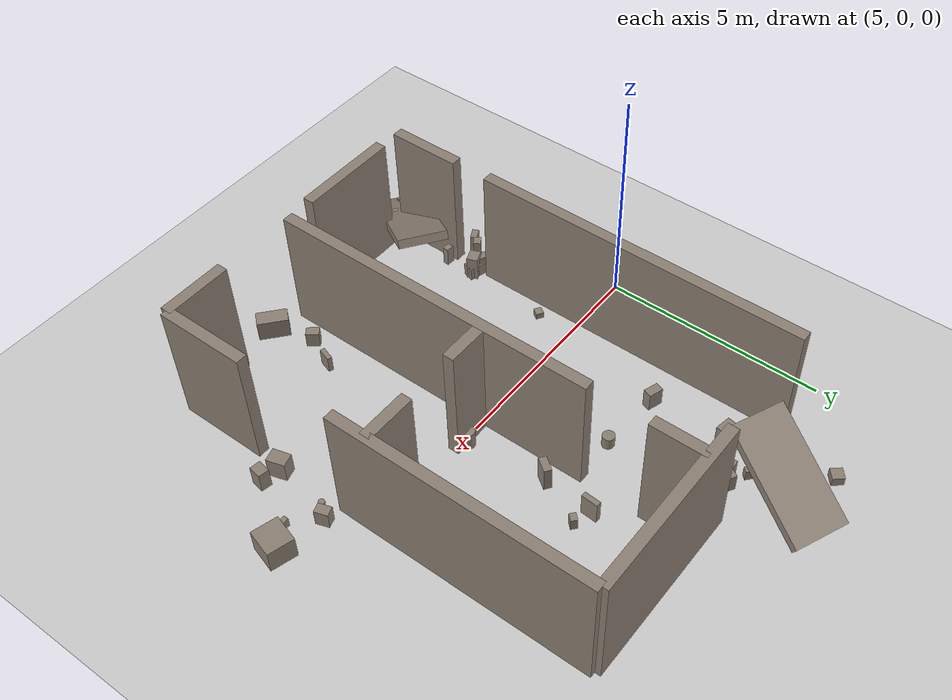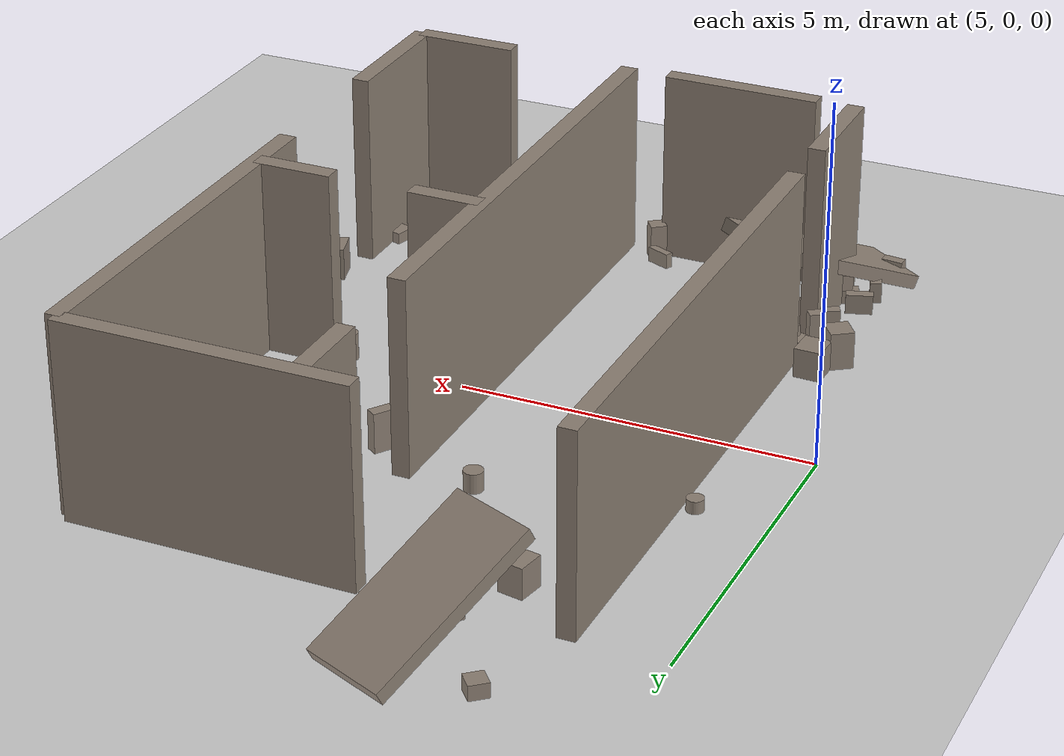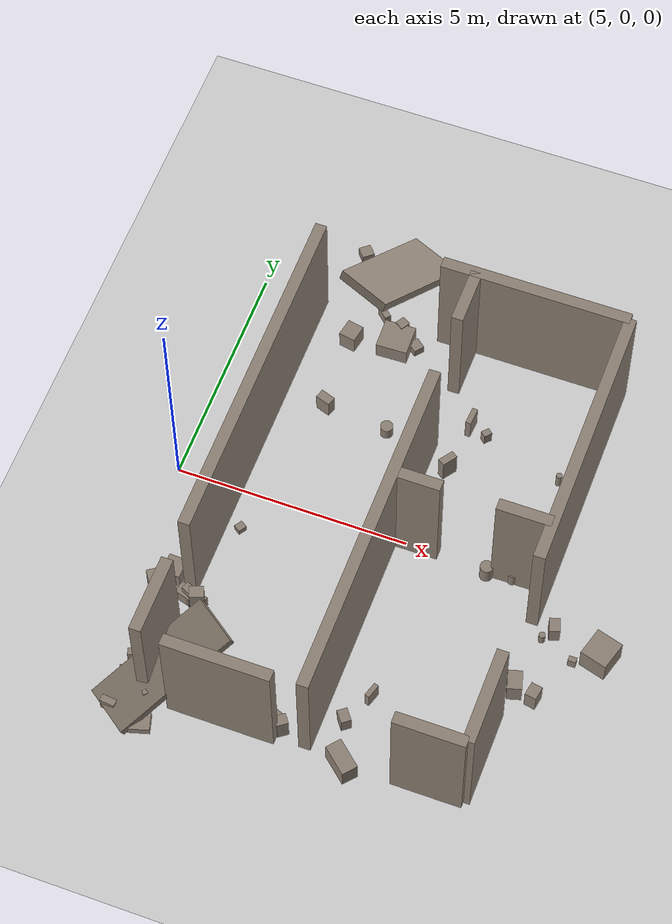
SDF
<sdf version="1.6">
 <world name="default">
  <model name="ground_plane">
   <static>1</static>
   <link name="link">
    <collision name="collision">
     <geometry><plane><normal>0 0 1</normal><size>100 100</size></plane></geometry>
     <surface><friction><ode><mu>100</mu><mu2>50</mu2></ode></friction></surface>
    </collision>
    <visual name="visual">
     <cast_shadows>0</cast_shadows>
     <geometry><plane><normal>0 0 1</normal><size>100 100</size></plane></geometry>
     <material>
      <script><uri>file://media/materials/scripts/gazebo.material</uri><name>Gazebo/Grey</name></script>
     </material>
    </visual>
   </link>
  </model>
  <model name="outer1_0">
   <static>1</static>
   <pose>13.000 -3.991 1.400 0 0.0000 1.5708</pose>
   <link name="l">
    <collision name="c"><geometry><box><size>2.018 0.250 2.800</size></box></geometry></collision>
    <visual name="v">
     <geometry><box><size>2.018 0.250 2.800</size></box></geometry>
     <material><ambient>0.55 0.5 0.45 1</ambient><diffuse>0.55 0.5 0.45 1</diffuse></material>
    </visual>
   </link>
  </model>
  <model name="outer1_1">
   <static>1</static>
   <pose>13.000 2.075 1.400 0 0.0000 1.5708</pose>
   <link name="l">
    <collision name="c"><geometry><box><size>5.851 0.250 2.800</size></box></geometry></collision>
    <visual name="v">
     <geometry><box><size>5.851 0.250 2.800</size></box></geometry>
     <material><ambient>0.55 0.5 0.45 1</ambient><diffuse>0.55 0.5 0.45 1</diffuse></material>
    </visual>
   </link>
  </model>
  <model name="outer2_1">
   <static>1</static>
   <pose>7.971 -5.000 1.400 0 0.0000 0.0000</pose>
   <link name="l">
    <collision name="c"><geometry><box><size>2.255 0.250 2.800</size></box></geometry></collision>
    <visual name="v">
     <geometry><box><size>2.255 0.250 2.800</size></box></geometry>
     <material><ambient>0.55 0.5 0.45 1</ambient><diffuse>0.55 0.5 0.45 1</diffuse></material>
    </visual>
   </link>
  </model>
  <model name="outer2_2">
   <static>1</static>
   <pose>12.260 -5.000 1.400 0 0.0000 0.0000</pose>
   <link name="l">
    <collision name="c"><geometry><box><size>1.479 0.250 2.800</size></box></geometry></collision>
    <visual name="v">
     <geometry><box><size>1.479 0.250 2.800</size></box></geometry>
     <material><ambient>0.55 0.5 0.45 1</ambient><diffuse>0.55 0.5 0.45 1</diffuse></material>
    </visual>
   </link>
  </model>
  <model name="outer3_1">
   <static>1</static>
   <pose>10.977 5.000 1.400 0 0.0000 0.0000</pose>
   <link name="l">
    <collision name="c"><geometry><box><size>4.045 0.250 2.800</size></box></geometry></collision>
    <visual name="v">
     <geometry><box><size>4.045 0.250 2.800</size></box></geometry>
     <material><ambient>0.55 0.5 0.45 1</ambient><diffuse>0.55 0.5 0.45 1</diffuse></material>
    </visual>
   </link>
  </model>
  <model name="part0_0">
   <static>1</static>
   <pose>6.300 -4.178 1.400 0 0.0000 1.5708</pose>
   <link name="l">
    <collision name="c"><geometry><box><size>1.644 0.250 2.800</size></box></geometry></collision>
    <visual name="v">
     <geometry><box><size>1.644 0.250 2.800</size></box></geometry>
     <material><ambient>0.55 0.5 0.45 1</ambient><diffuse>0.55 0.5 0.45 1</diffuse></material>
    </visual>
   </link>
  </model>
  <model name="part0_1">
   <static>1</static>
   <pose>6.300 1.231 1.400 0 0.0000 1.5708</pose>
   <link name="l">
    <collision name="c"><geometry><box><size>7.538 0.250 2.800</size></box></geometry></collision>
    <visual name="v">
     <geometry><box><size>7.538 0.250 2.800</size></box></geometry>
     <material><ambient>0.55 0.5 0.45 1</ambient><diffuse>0.55 0.5 0.45 1</diffuse></material>
    </visual>
   </link>
  </model>
  <model name="part1_0">
   <static>1</static>
   <pose>9.700 -1.273 1.400 0 0.0000 1.5708</pose>
   <link name="l">
    <collision name="c"><geometry><box><size>7.454 0.250 2.800</size></box></geometry></collision>
    <visual name="v">
     <geometry><box><size>7.454 0.250 2.800</size></box></geometry>
     <material><ambient>0.55 0.5 0.45 1</ambient><diffuse>0.55 0.5 0.45 1</diffuse></material>
    </visual>
   </link>
  </model>
  <model name="part1_1">
   <static>1</static>
   <pose>9.700 4.390 1.400 0 0.0000 1.5708</pose>
   <link name="l">
    <collision name="c"><geometry><box><size>1.221 0.250 2.800</size></box></geometry></collision>
    <visual name="v">
     <geometry><box><size>1.221 0.250 2.800</size></box></geometry>
     <material><ambient>0.55 0.5 0.45 1</ambient><diffuse>0.55 0.5 0.45 1</diffuse></material>
    </visual>
   </link>
  </model>
  <model name="back_0">
   <static>1</static>
   <pose>10.207 0.000 1.400 0 0.0000 0.0000</pose>
   <link name="l">
    <collision name="c"><geometry><box><size>1.014 0.250 2.800</size></box></geometry></collision>
    <visual name="v">
     <geometry><box><size>1.014 0.250 2.800</size></box></geometry>
     <material><ambient>0.55 0.5 0.45 1</ambient><diffuse>0.55 0.5 0.45 1</diffuse></material>
    </visual>
   </link>
  </model>
  <model name="back_1">
   <static>1</static>
   <pose>12.433 0.000 1.400 0 0.0000 0.0000</pose>
   <link name="l">
    <collision name="c"><geometry><box><size>1.135 0.250 2.800</size></box></geometry></collision>
    <visual name="v">
     <geometry><box><size>1.135 0.250 2.800</size></box></geometry>
     <material><ambient>0.55 0.5 0.45 1</ambient><diffuse>0.55 0.5 0.45 1</diffuse></material>
    </visual>
   </link>
  </model>
  <model name="rubble_25">
   <static>1</static>
   <pose>13.565 -2.472 0.237 0 0.0000 2.9727</pose>
   <link name="l">
    <collision name="c"><geometry><box><size>0.243 0.292 0.474</size></box></geometry></collision>
    <visual name="v">
     <geometry><box><size>0.243 0.292 0.474</size></box></geometry>
     <material><ambient>0.55 0.5 0.45 1</ambient><diffuse>0.55 0.5 0.45 1</diffuse></material>
    </visual>
   </link>
  </model>
  <model name="rubble_26">
   <static>1</static>
   <pose>13.142 -2.372 0.240 0 0.0000 0.2754</pose>
   <link name="l">
    <collision name="c"><geometry><box><size>0.303 0.410 0.480</size></box></geometry></collision>
    <visual name="v">
     <geometry><box><size>0.303 0.410 0.480</size></box></geometry>
     <material><ambient>0.55 0.5 0.45 1</ambient><diffuse>0.55 0.5 0.45 1</diffuse></material>
    </visual>
   </link>
  </model>
  <model name="rubble_27">
   <static>1</static>
   <pose>14.039 -1.427 0.112 0 0.0000 1.5655</pose>
   <link name="l">
    <collision name="c"><geometry><box><size>0.112 0.166 0.225</size></box></geometry></collision>
    <visual name="v">
     <geometry><box><size>0.112 0.166 0.225</size></box></geometry>
     <material><ambient>0.55 0.5 0.45 1</ambient><diffuse>0.55 0.5 0.45 1</diffuse></material>
    </visual>
   </link>
  </model>
  <model name="rubble_28">
   <static>1</static>
   <pose>14.538 -1.159 0.270 0 0.0000 2.8644</pose>
   <link name="l">
    <collision name="c"><geometry><box><size>0.586 0.624 0.540</size></box></geometry></collision>
    <visual name="v">
     <geometry><box><size>0.586 0.624 0.540</size></box></geometry>
     <material><ambient>0.55 0.5 0.45 1</ambient><diffuse>0.55 0.5 0.45 1</diffuse></material>
    </visual>
   </link>
  </model>
  <model name="rubble_29">
   <static>1</static>
   <pose>13.486 -0.903 0.196 0 0.0000 1.8927</pose>
   <link name="l">
    <collision name="c"><geometry><box><size>0.301 0.219 0.393</size></box></geometry></collision>
    <visual name="v">
     <geometry><box><size>0.301 0.219 0.393</size></box></geometry>
     <material><ambient>0.55 0.5 0.45 1</ambient><diffuse>0.55 0.5 0.45 1</diffuse></material>
    </visual>
   </link>
  </model>
  <model name="rubble_30">
   <static>1</static>
   <pose>5.774 -4.727 0.153 0 0.0000 0.3394</pose>
   <link name="l">
    <collision name="c"><geometry><box><size>0.166 0.151 0.306</size></box></geometry></collision>
    <visual name="v">
     <geometry><box><size>0.166 0.151 0.306</size></box></geometry>
     <material><ambient>0.55 0.5 0.45 1</ambient><diffuse>0.55 0.5 0.45 1</diffuse></material>
    </visual>
   </link>
  </model>
  <model name="rubble_31">
   <static>1</static>
   <pose>6.247 -4.514 0.215 0 0.0000 2.2440</pose>
   <link name="l">
    <collision name="c"><geometry><box><size>0.209 0.335 0.431</size></box></geometry></collision>
    <visual name="v">
     <geometry><box><size>0.209 0.335 0.431</size></box></geometry>
     <material><ambient>0.55 0.5 0.45 1</ambient><diffuse>0.55 0.5 0.45 1</diffuse></material>
    </visual>
   </link>
  </model>
  <model name="rubble_32">
   <static>1</static>
   <pose>6.153 -4.541 0.100 0 0.0000 0.4188</pose>
   <link name="l">
    <collision name="c"><geometry><box><size>0.366 0.174 0.199</size></box></geometry></collision>
    <visual name="v">
     <geometry><box><size>0.366 0.174 0.199</size></box></geometry>
     <material><ambient>0.55 0.5 0.45 1</ambient><diffuse>0.55 0.5 0.45 1</diffuse></material>
    </visual>
   </link>
  </model>
  <model name="rubble_33">
   <static>1</static>
   <pose>6.441 -5.160 0.268 0 0.0000 2.3143</pose>
   <link name="l">
    <collision name="c"><geometry><box><size>0.104 0.149 0.537</size></box></geometry></collision>
    <visual name="v">
     <geometry><box><size>0.104 0.149 0.537</size></box></geometry>
     <material><ambient>0.55 0.5 0.45 1</ambient><diffuse>0.55 0.5 0.45 1</diffuse></material>
    </visual>
   </link>
  </model>
  <model name="rubble_34">
   <static>1</static>
   <pose>6.408 -5.663 0.091 0 0.0000 0.2832</pose>
   <link name="l">
    <collision name="c"><geometry><box><size>0.576 0.382 0.182</size></box></geometry></collision>
    <visual name="v">
     <geometry><box><size>0.576 0.382 0.182</size></box></geometry>
     <material><ambient>0.55 0.5 0.45 1</ambient><diffuse>0.55 0.5 0.45 1</diffuse></material>
    </visual>
   </link>
  </model>
  <model name="rubble_35">
   <static>1</static>
   <pose>5.764 -5.498 0.157 0 0.0000 3.0426</pose>
   <link name="l">
    <collision name="c"><geometry><box><size>0.315 0.151 0.314</size></box></geometry></collision>
    <visual name="v">
     <geometry><box><size>0.315 0.151 0.314</size></box></geometry>
     <material><ambient>0.55 0.5 0.45 1</ambient><diffuse>0.55 0.5 0.45 1</diffuse></material>
    </visual>
   </link>
  </model>
  <model name="rubble_36">
   <static>1</static>
   <pose>5.877 -4.303 0.144 0 0.0000 0.3114</pose>
   <link name="l">
    <collision name="c"><geometry><box><size>0.384 0.150 0.288</size></box></geometry></collision>
    <visual name="v">
     <geometry><box><size>0.384 0.150 0.288</size></box></geometry>
     <material><ambient>0.55 0.5 0.45 1</ambient><diffuse>0.55 0.5 0.45 1</diffuse></material>
    </visual>
   </link>
  </model>
  <model name="rubble_38">
   <static>1</static>
   <pose>10.238 -4.216 0.181 0 0.0000 0.6585</pose>
   <link name="l">
    <collision name="c"><geometry><box><size>0.212 0.286 0.363</size></box></geometry></collision>
    <visual name="v">
     <geometry><box><size>0.212 0.286 0.363</size></box></geometry>
     <material><ambient>0.55 0.5 0.45 1</ambient><diffuse>0.55 0.5 0.45 1</diffuse></material>
    </visual>
   </link>
  </model>
  <model name="rubble_39">
   <static>1</static>
   <pose>9.144 -4.801 0.260 0 0.0000 0.6329</pose>
   <link name="l">
    <collision name="c"><geometry><box><size>0.240 0.229 0.519</size></box></geometry></collision>
    <visual name="v">
     <geometry><box><size>0.240 0.229 0.519</size></box></geometry>
     <material><ambient>0.55 0.5 0.45 1</ambient><diffuse>0.55 0.5 0.45 1</diffuse></material>
    </visual>
   </link>
  </model>
  <model name="rubble_40">
   <static>1</static>
   <pose>10.520 -5.112 0.238 0 0.0000 2.4332</pose>
   <link name="l">
    <collision name="c"><geometry><box><size>0.674 0.346 0.475</size></box></geometry></collision>
    <visual name="v">
     <geometry><box><size>0.674 0.346 0.475</size></box></geometry>
     <material><ambient>0.55 0.5 0.45 1</ambient><diffuse>0.55 0.5 0.45 1</diffuse></material>
    </visual>
   </link>
  </model>
  <model name="rubble_41">
   <static>1</static>
   <pose>8.194 4.791 0.209 0 0.0000 1.0395</pose>
   <link name="l">
    <collision name="c"><geometry><box><size>0.218 0.212 0.418</size></box></geometry></collision>
    <visual name="v">
     <geometry><box><size>0.218 0.212 0.418</size></box></geometry>
     <material><ambient>0.55 0.5 0.45 1</ambient><diffuse>0.55 0.5 0.45 1</diffuse></material>
    </visual>
   </link>
  </model>
  <model name="rubble_42">
   <static>1</static>
   <pose>7.246 4.225 0.219 0 0.0000 2.9575</pose>
   <link name="l">
    <collision name="c"><geometry><box><size>0.360 0.389 0.438</size></box></geometry></collision>
    <visual name="v">
     <geometry><box><size>0.360 0.389 0.438</size></box></geometry>
     <material><ambient>0.55 0.5 0.45 1</ambient><diffuse>0.55 0.5 0.45 1</diffuse></material>
    </visual>
   </link>
  </model>
  <model name="rubble_43">
   <static>1</static>
   <pose>8.175 4.435 0.197 0 0.0000 1.6039</pose>
   <link name="l">
    <collision name="c"><geometry><box><size>0.664 0.676 0.394</size></box></geometry></collision>
    <visual name="v">
     <geometry><box><size>0.664 0.676 0.394</size></box></geometry>
     <material><ambient>0.55 0.5 0.45 1</ambient><diffuse>0.55 0.5 0.45 1</diffuse></material>
    </visual>
   </link>
  </model>
  <model name="rubble_44">
   <static>1</static>
   <pose>5.645 -2.713 0.272 0 0.0000 0.6142</pose>
   <link name="l">
    <collision name="c"><geometry><box><size>0.340 0.352 0.544</size></box></geometry></collision>
    <visual name="v">
     <geometry><box><size>0.340 0.352 0.544</size></box></geometry>
     <material><ambient>0.55 0.5 0.45 1</ambient><diffuse>0.55 0.5 0.45 1</diffuse></material>
    </visual>
   </link>
  </model>
  <model name="rubble_45">
   <static>1</static>
   <pose>6.380 -2.739 0.127 0 0.0000 1.5098</pose>
   <link name="l">
    <collision name="c"><geometry><box><size>0.158 0.157 0.255</size></box></geometry></collision>
    <visual name="v">
     <geometry><box><size>0.158 0.157 0.255</size></box></geometry>
     <material><ambient>0.55 0.5 0.45 1</ambient><diffuse>0.55 0.5 0.45 1</diffuse></material>
    </visual>
   </link>
  </model>
  <model name="rubble_46">
   <static>1</static>
   <pose>6.580 -3.489 0.223 0 0.0000 3.0622</pose>
   <link name="l">
    <collision name="c"><geometry><box><size>0.181 0.135 0.445</size></box></geometry></collision>
    <visual name="v">
     <geometry><box><size>0.181 0.135 0.445</size></box></geometry>
     <material><ambient>0.55 0.5 0.45 1</ambient><diffuse>0.55 0.5 0.45 1</diffuse></material>
    </visual>
   </link>
  </model>
  <model name="rubble_47">
   <static>1</static>
   <pose>5.947 -3.229 0.264 0 0.0000 2.0199</pose>
   <link name="l">
    <collision name="c"><geometry><box><size>0.152 0.261 0.529</size></box></geometry></collision>
    <visual name="v">
     <geometry><box><size>0.152 0.261 0.529</size></box></geometry>
     <material><ambient>0.55 0.5 0.45 1</ambient><diffuse>0.55 0.5 0.45 1</diffuse></material>
    </visual>
   </link>
  </model>
  <model name="rubble_48">
   <static>1</static>
   <pose>6.402 -2.743 0.148 0 0.0000 2.8496</pose>
   <link name="l">
    <collision name="c"><geometry><box><size>0.628 0.266 0.297</size></box></geometry></collision>
    <visual name="v">
     <geometry><box><size>0.628 0.266 0.297</size></box></geometry>
     <material><ambient>0.55 0.5 0.45 1</ambient><diffuse>0.55 0.5 0.45 1</diffuse></material>
    </visual>
   </link>
  </model>
  <model name="rubble_49">
   <static>1</static>
   <pose>6.544 -2.780 0.285 0 0.0000 1.9497</pose>
   <link name="l">
    <collision name="c"><geometry><box><size>0.246 0.297 0.569</size></box></geometry></collision>
    <visual name="v">
     <geometry><box><size>0.246 0.297 0.569</size></box></geometry>
     <material><ambient>0.55 0.5 0.45 1</ambient><diffuse>0.55 0.5 0.45 1</diffuse></material>
    </visual>
   </link>
  </model>
  <model name="rubble_50">
   <static>1</static>
   <pose>6.410 -2.737 0.229 0 0.0000 1.1579</pose>
   <link name="l">
    <collision name="c"><geometry><box><size>0.175 0.367 0.457</size></box></geometry></collision>
    <visual name="v">
     <geometry><box><size>0.175 0.367 0.457</size></box></geometry>
     <material><ambient>0.55 0.5 0.45 1</ambient><diffuse>0.55 0.5 0.45 1</diffuse></material>
    </visual>
   </link>
  </model>
  <model name="rubble_51">
   <static>1</static>
   <pose>6.358 -2.798 0.142 0 0.0000 2.5929</pose>
   <link name="l">
    <collision name="c"><geometry><box><size>0.193 0.122 0.284</size></box></geometry></collision>
    <visual name="v">
     <geometry><box><size>0.193 0.122 0.284</size></box></geometry>
     <material><ambient>0.55 0.5 0.45 1</ambient><diffuse>0.55 0.5 0.45 1</diffuse></material>
    </visual>
   </link>
  </model>
  <model name="rubble_52">
   <static>1</static>
   <pose>5.873 -2.314 0.216 0 0.0000 3.1114</pose>
   <link name="l">
    <collision name="c"><geometry><box><size>0.388 0.426 0.431</size></box></geometry></collision>
    <visual name="v">
     <geometry><box><size>0.388 0.426 0.431</size></box></geometry>
     <material><ambient>0.55 0.5 0.45 1</ambient><diffuse>0.55 0.5 0.45 1</diffuse></material>
    </visual>
   </link>
  </model>
  <model name="rubble_53">
   <static>1</static>
   <pose>6.095 -3.036 0.269 0 0.0000 0.6207</pose>
   <link name="l">
    <collision name="c"><geometry><box><size>0.205 0.165 0.537</size></box></geometry></collision>
    <visual name="v">
     <geometry><box><size>0.205 0.165 0.537</size></box></geometry>
     <material><ambient>0.55 0.5 0.45 1</ambient><diffuse>0.55 0.5 0.45 1</diffuse></material>
    </visual>
   </link>
  </model>
  <model name="rubble_54">
   <static>1</static>
   <pose>10.233 1.889 0.289 0 0.0000 0.9646</pose>
   <link name="l">
    <collision name="c"><geometry><box><size>0.347 0.169 0.578</size></box></geometry></collision>
    <visual name="v">
     <geometry><box><size>0.347 0.169 0.578</size></box></geometry>
     <material><ambient>0.55 0.5 0.45 1</ambient><diffuse>0.55 0.5 0.45 1</diffuse></material>
    </visual>
   </link>
  </model>
  <model name="rubble_55">
   <static>1</static>
   <pose>10.731 2.918 0.142 0 0.0000 2.4163</pose>
   <link name="l">
    <collision name="c"><geometry><box><size>0.145 0.179 0.284</size></box></geometry></collision>
    <visual name="v">
     <geometry><box><size>0.145 0.179 0.284</size></box></geometry>
     <material><ambient>0.55 0.5 0.45 1</ambient><diffuse>0.55 0.5 0.45 1</diffuse></material>
    </visual>
   </link>
  </model>
  <model name="rubble_56">
   <static>1</static>
   <pose>10.348 3.047 0.267 0 0.0000 3.0703</pose>
   <link name="l">
    <collision name="c"><geometry><box><size>0.118 0.377 0.534</size></box></geometry></collision>
    <visual name="v">
     <geometry><box><size>0.118 0.377 0.534</size></box></geometry>
     <material><ambient>0.55 0.5 0.45 1</ambient><diffuse>0.55 0.5 0.45 1</diffuse></material>
    </visual>
   </link>
  </model>
  <model name="leaning_0">
   <static>1</static>
   <pose>6.566 -4.595 0.645 0 -0.4012 0.9473</pose>
   <link name="l">
    <collision name="c"><geometry><box><size>2.832 1.104 0.200</size></box></geometry></collision>
    <visual name="v">
     <geometry><box><size>2.832 1.104 0.200</size></box></geometry>
     <material><ambient>0.55 0.5 0.45 1</ambient><diffuse>0.55 0.5 0.45 1</diffuse></material>
    </visual>
   </link>
  </model>
  <model name="leaning_1">
   <static>1</static>
   <pose>7.772 5.763 0.689 0 0.4797 1.1663</pose>
   <link name="l">
    <collision name="c"><geometry><box><size>2.603 1.243 0.200</size></box></geometry></collision>
    <visual name="v">
     <geometry><box><size>2.603 1.243 0.200</size></box></geometry>
     <material><ambient>0.55 0.5 0.45 1</ambient><diffuse>0.55 0.5 0.45 1</diffuse></material>
    </visual>
   </link>
  </model>
  <model name="debris_0">
   <static>1</static>
   <pose>8.997 -4.573 0.112 0 0.0000 1.1629</pose>
   <link name="l">
    <collision name="c"><geometry><box><size>0.113 0.366 0.223</size></box></geometry></collision>
    <visual name="v">
     <geometry><box><size>0.113 0.366 0.223</size></box></geometry>
     <material><ambient>0.55 0.5 0.45 1</ambient><diffuse>0.55 0.5 0.45 1</diffuse></material>
    </visual>
   </link>
  </model>
  <model name="debris_1">
   <static>1</static>
   <pose>12.482 2.435 0.166 0 0.0000 0.0000</pose>
   <link name="l">
    <collision name="c">
     <geometry><cylinder><radius>0.064</radius><length>0.332</length></cylinder></geometry>
    </collision>
    <visual name="v">
     <geometry><cylinder><radius>0.064</radius><length>0.332</length></cylinder></geometry>
     <material><ambient>0.55 0.5 0.45 1</ambient><diffuse>0.55 0.5 0.45 1</diffuse></material>
    </visual>
   </link>
  </model>
  <model name="debris_5">
   <static>1</static>
   <pose>8.607 4.505 0.097 0 0.0000 0.8977</pose>
   <link name="l">
    <collision name="c"><geometry><box><size>0.233 0.255 0.193</size></box></geometry></collision>
    <visual name="v">
     <geometry><box><size>0.233 0.255 0.193</size></box></geometry>
     <material><ambient>0.55 0.5 0.45 1</ambient><diffuse>0.55 0.5 0.45 1</diffuse></material>
    </visual>
   </link>
  </model>
  <model name="debris_6">
   <static>1</static>
   <pose>10.561 -3.531 0.197 0 0.0000 1.2666</pose>
   <link name="l">
    <collision name="c"><geometry><box><size>0.314 0.105 0.394</size></box></geometry></collision>
    <visual name="v">
     <geometry><box><size>0.314 0.105 0.394</size></box></geometry>
     <material><ambient>0.55 0.5 0.45 1</ambient><diffuse>0.55 0.5 0.45 1</diffuse></material>
    </visual>
   </link>
  </model>
  <model name="debris_7">
   <static>1</static>
   <pose>7.320 2.474 0.218 0 0.0000 1.2487</pose>
   <link name="l">
    <collision name="c"><geometry><box><size>0.202 0.331 0.436</size></box></geometry></collision>
    <visual name="v">
     <geometry><box><size>0.202 0.331 0.436</size></box></geometry>
     <material><ambient>0.55 0.5 0.45 1</ambient><diffuse>0.55 0.5 0.45 1</diffuse></material>
    </visual>
   </link>
  </model>
  <model name="debris_8">
   <static>1</static>
   <pose>10.396 0.127 0.210 0 0.0000 0.0000</pose>
   <link name="l">
    <collision name="c">
     <geometry><cylinder><radius>0.139</radius><length>0.421</length></cylinder></geometry>
    </collision>
    <visual name="v">
     <geometry><cylinder><radius>0.139</radius><length>0.421</length></cylinder></geometry>
     <material><ambient>0.55 0.5 0.45 1</ambient><diffuse>0.55 0.5 0.45 1</diffuse></material>
    </visual>
   </link>
  </model>
  <model name="debris_9">
   <static>1</static>
   <pose>6.716 -0.861 0.072 0 0.0000 2.5699</pose>
   <link name="l">
    <collision name="c"><geometry><box><size>0.171 0.185 0.144</size></box></geometry></collision>
    <visual name="v">
     <geometry><box><size>0.171 0.185 0.144</size></box></geometry>
     <material><ambient>0.55 0.5 0.45 1</ambient><diffuse>0.55 0.5 0.45 1</diffuse></material>
    </visual>
   </link>
  </model>
  <model name="debris_12">
   <static>1</static>
   <pose>12.842 -3.778 0.082 0 0.0000 2.8443</pose>
   <link name="l">
    <collision name="c"><geometry><box><size>0.275 0.302 0.164</size></box></geometry></collision>
    <visual name="v">
     <geometry><box><size>0.275 0.302 0.164</size></box></geometry>
     <material><ambient>0.55 0.5 0.45 1</ambient><diffuse>0.55 0.5 0.45 1</diffuse></material>
    </visual>
   </link>
  </model>
  <model name="debris_14">
   <static>1</static>
   <pose>12.316 -0.051 0.156 0 0.0000 0.0000</pose>
   <link name="l">
    <collision name="c">
     <geometry><cylinder><radius>0.105</radius><length>0.312</length></cylinder></geometry>
    </collision>
    <visual name="v">
     <geometry><cylinder><radius>0.105</radius><length>0.312</length></cylinder></geometry>
     <material><ambient>0.55 0.5 0.45 1</ambient><diffuse>0.55 0.5 0.45 1</diffuse></material>
    </visual>
   </link>
  </model>
  <model name="debris_15">
   <static>1</static>
   <pose>13.303 -1.129 0.121 0 0.0000 0.0000</pose>
   <link name="l">
    <collision name="c">
     <geometry><cylinder><radius>0.069</radius><length>0.243</length></cylinder></geometry>
    </collision>
    <visual name="v">
     <geometry><cylinder><radius>0.069</radius><length>0.243</length></cylinder></geometry>
     <material><ambient>0.55 0.5 0.45 1</ambient><diffuse>0.55 0.5 0.45 1</diffuse></material>
    </visual>
   </link>
  </model>
  <model name="debris_17">
   <static>1</static>
   <pose>9.681 -3.539 0.111 0 0.0000 2.5813</pose>
   <link name="l">
    <collision name="c"><geometry><box><size>0.158 0.119 0.223</size></box></geometry></collision>
    <visual name="v">
     <geometry><box><size>0.158 0.119 0.223</size></box></geometry>
     <material><ambient>0.55 0.5 0.45 1</ambient><diffuse>0.55 0.5 0.45 1</diffuse></material>
    </visual>
   </link>
  </model>
  <model name="debris_18">
   <static>1</static>
   <pose>8.009 -3.900 0.074 0 0.0000 2.2388</pose>
   <link name="l">
    <collision name="c"><geometry><box><size>0.106 0.225 0.149</size></box></geometry></collision>
    <visual name="v">
     <geometry><box><size>0.106 0.225 0.149</size></box></geometry>
     <material><ambient>0.55 0.5 0.45 1</ambient><diffuse>0.55 0.5 0.45 1</diffuse></material>
    </visual>
   </link>
  </model>
  <model name="debris_20">
   <static>1</static>
   <pose>6.004 1.680 0.090 0 0.0000 0.0000</pose>
   <link name="l">
    <collision name="c">
     <geometry><cylinder><radius>0.118</radius><length>0.179</length></cylinder></geometry>
    </collision>
    <visual name="v">
     <geometry><cylinder><radius>0.118</radius><length>0.179</length></cylinder></geometry>
     <material><ambient>0.55 0.5 0.45 1</ambient><diffuse>0.55 0.5 0.45 1</diffuse></material>
    </visual>
   </link>
  </model>
  <model name="debris_22">
   <static>1</static>
   <pose>11.781 -0.126 0.197 0 0.0000 0.0000</pose>
   <link name="l">
    <collision name="c">
     <geometry><cylinder><radius>0.138</radius><length>0.393</length></cylinder></geometry>
    </collision>
    <visual name="v">
     <geometry><cylinder><radius>0.138</radius><length>0.393</length></cylinder></geometry>
     <material><ambient>0.55 0.5 0.45 1</ambient><diffuse>0.55 0.5 0.45 1</diffuse></material>
    </visual>
   </link>
  </model>
  <model name="debris_25">
   <static>1</static>
   <pose>6.786 6.398 0.105 0 0.0000 0.7078</pose>
   <link name="l">
    <collision name="c"><geometry><box><size>0.266 0.260 0.210</size></box></geometry></collision>
    <visual name="v">
     <geometry><box><size>0.266 0.260 0.210</size></box></geometry>
     <material><ambient>0.55 0.5 0.45 1</ambient><diffuse>0.55 0.5 0.45 1</diffuse></material>
    </visual>
   </link>
  </model>
  <model name="debris_29">
   <static>1</static>
   <pose>8.729 2.349 0.140 0 0.0000 0.0000</pose>
   <link name="l">
    <collision name="c">
     <geometry><cylinder><radius>0.135</radius><length>0.281</length></cylinder></geometry>
    </collision>
    <visual name="v">
     <geometry><cylinder><radius>0.135</radius><length>0.281</length></cylinder></geometry>
     <material><ambient>0.55 0.5 0.45 1</ambient><diffuse>0.55 0.5 0.45 1</diffuse></material>
    </visual>
   </link>
  </model>
  <model name="debris_30">
   <static>1</static>
   <pose>7.703 5.033 0.126 0 0.0000 2.3930</pose>
   <link name="l">
    <collision name="c"><geometry><box><size>0.309 0.135 0.252</size></box></geometry></collision>
    <visual name="v">
     <geometry><box><size>0.309 0.135 0.252</size></box></geometry>
     <material><ambient>0.55 0.5 0.45 1</ambient><diffuse>0.55 0.5 0.45 1</diffuse></material>
    </visual>
   </link>
  </model>
  <model name="goal_marker">
   <static>1</static>
   <pose>12.326 -4.132 0 0 0 0</pose>
   <link name="l">
    <visual name="pad">
     <pose>0 0 0.005 0 0 0</pose>
     <geometry><cylinder><radius>0.2</radius><length>0.01</length></cylinder></geometry>
     <material><ambient>0.15 0.6 0.25 1</ambient><diffuse>0.15 0.6 0.25 1</diffuse></material>
    </visual>
    <visual name="pole">
     <pose>0 0 0.3 0 0 0</pose>
     <geometry><cylinder><radius>0.03</radius><length>0.6</length></cylinder></geometry>
     <material><ambient>0.15 0.6 0.25 1</ambient><diffuse>0.15 0.6 0.25 1</diffuse></material>
    </visual>
   </link>
  </model>
 </world>
</sdf>
